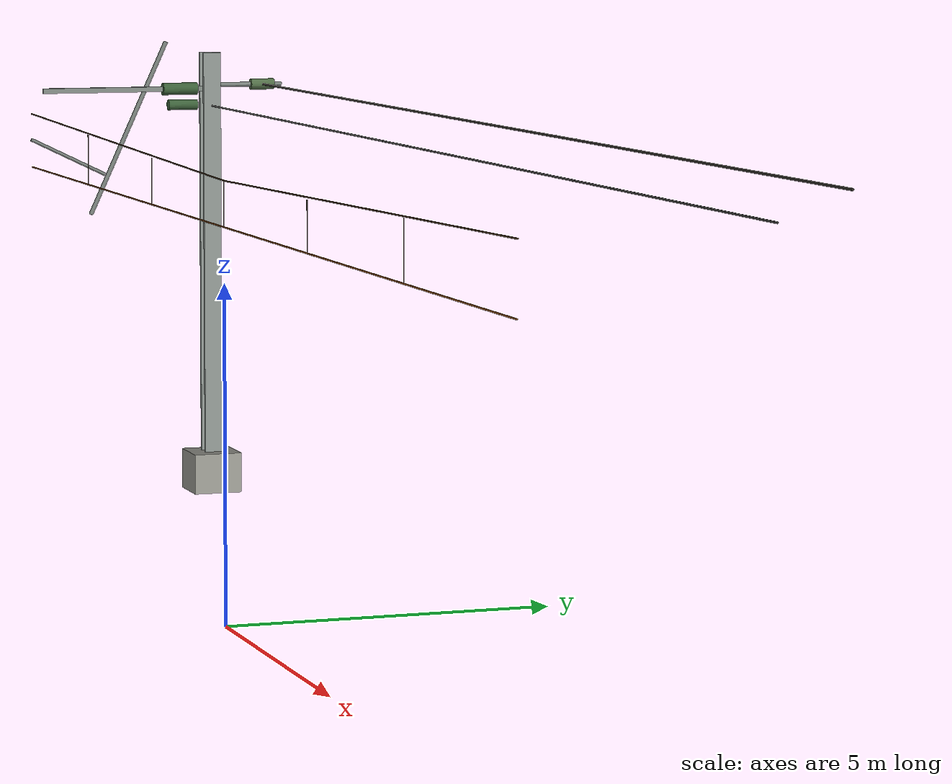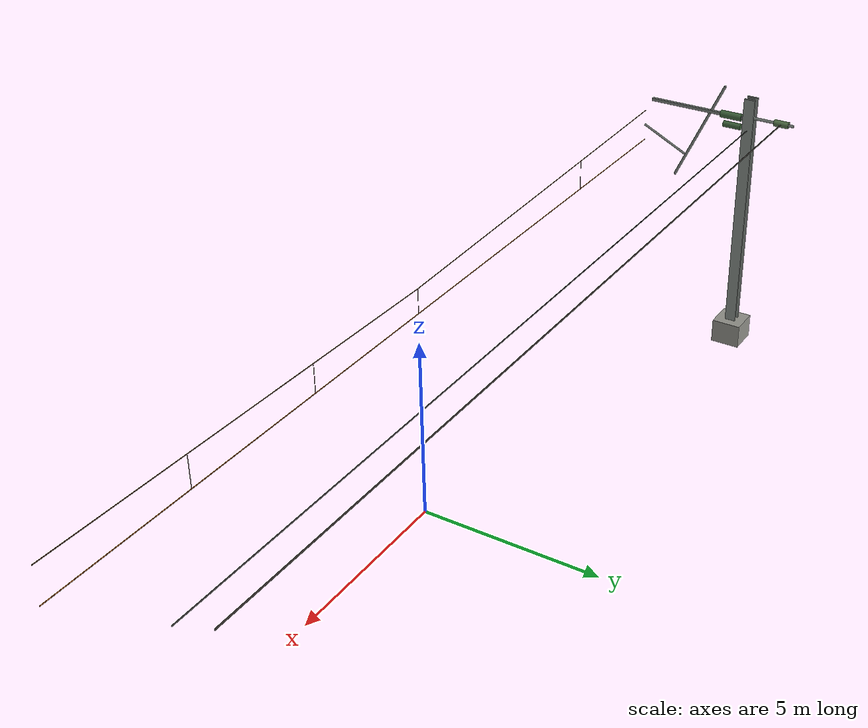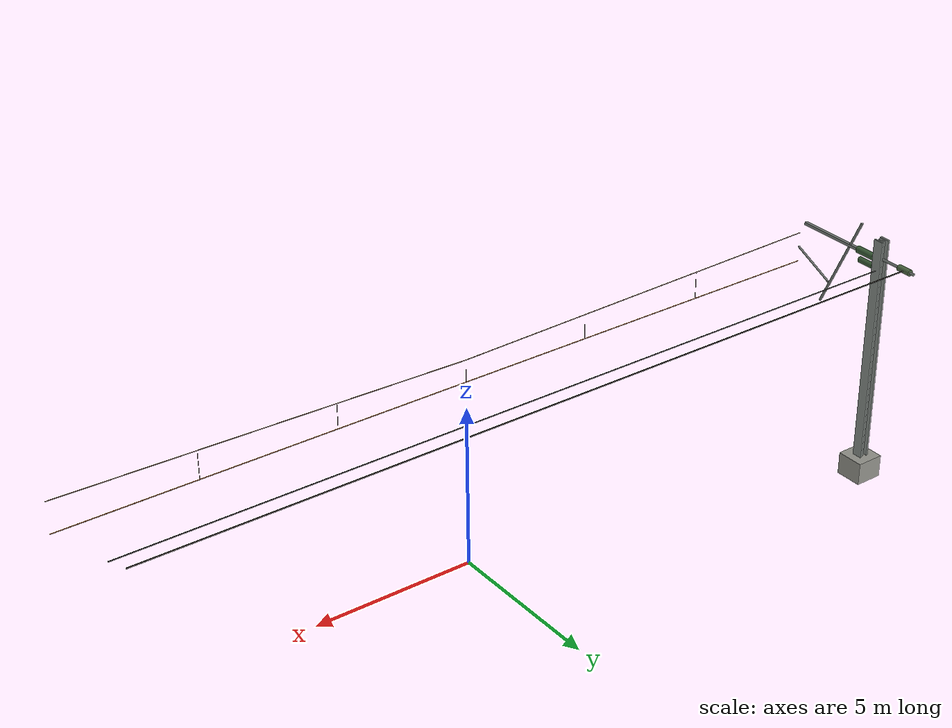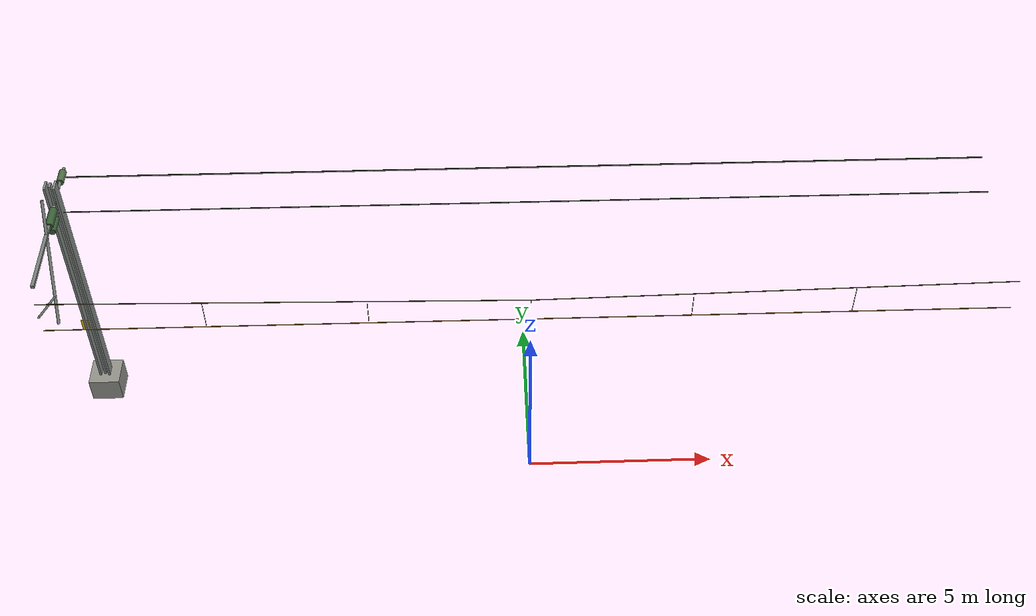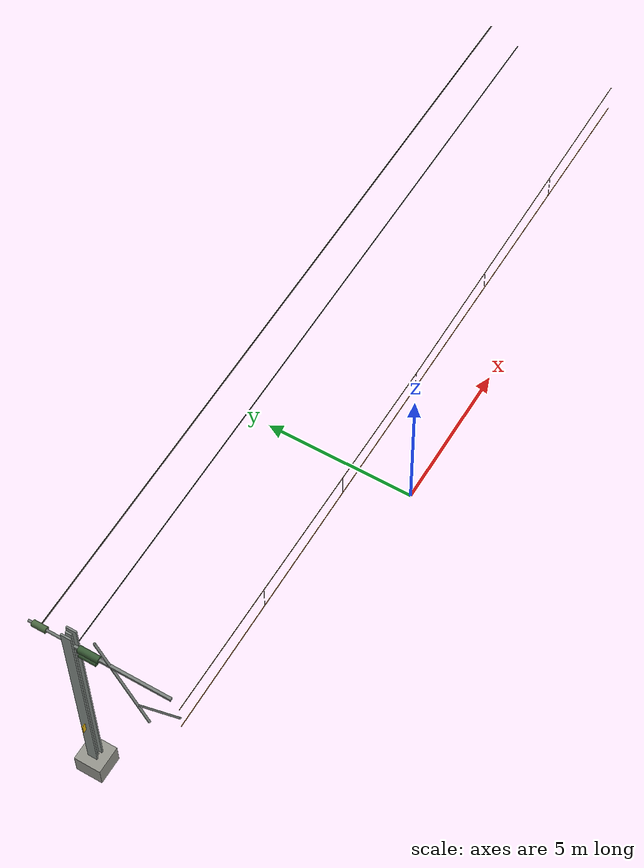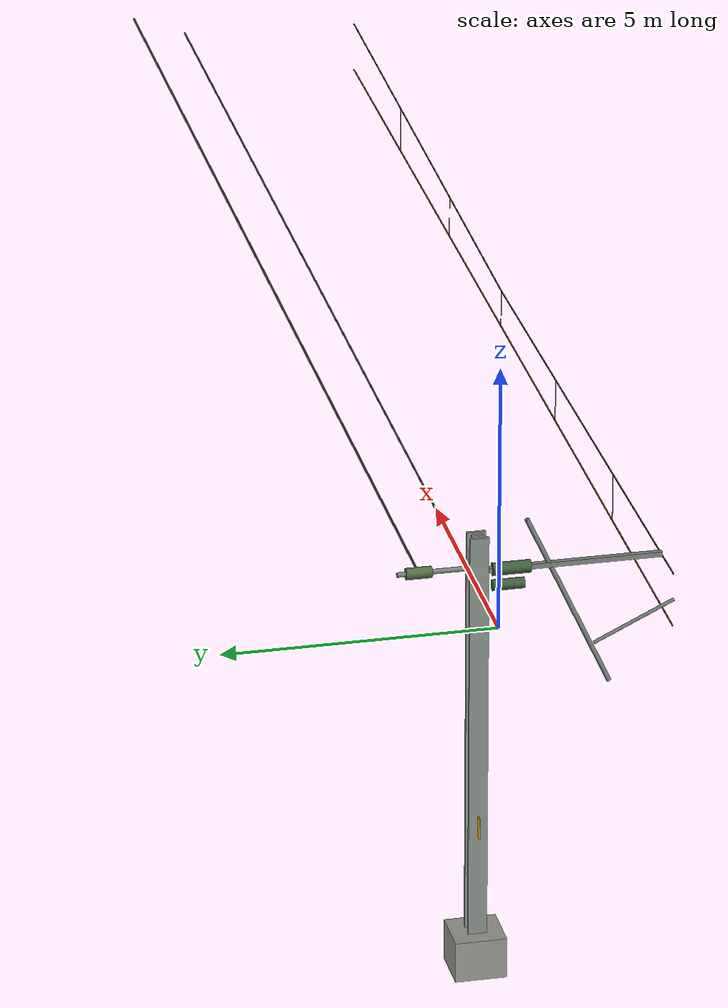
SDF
<?xml version="1.0"?>
<sdf version="1.9">
  <model name="catenary_span_24m">
    <static>true</static>
    <plugin filename="gz-sim-label-system" name="gz::sim::systems::Label"><label>30</label></plugin>
    <include><uri>model://catenary_mast</uri><name>mast_left</name><pose>-12 0 0 0 0 0</pose></include>
    <link name="conductors">
      <visual name="contact"><pose>0 0 5.812 0 1.570796 0</pose><geometry><cylinder><radius>0.011</radius><length>24</length></cylinder></geometry><material><diffuse>0.58 0.33 0.11 1</diffuse><specular>0.55 0.40 0.20 1</specular></material></visual>
      <visual name="messenger_0"><pose>-9 0 6.667 0 1.59162 0</pose><geometry><cylinder><radius>0.010</radius><length>6.001</length></cylinder></geometry><material><diffuse>0.34 0.25 0.15 1</diffuse></material></visual>
      <visual name="messenger_1"><pose>-3 0 6.542 0 1.59162 0</pose><geometry><cylinder><radius>0.010</radius><length>6.001</length></cylinder></geometry><material><diffuse>0.34 0.25 0.15 1</diffuse></material></visual>
      <visual name="messenger_2"><pose>3 0 6.542 0 1.54997 0</pose><geometry><cylinder><radius>0.010</radius><length>6.001</length></cylinder></geometry><material><diffuse>0.34 0.25 0.15 1</diffuse></material></visual>
      <visual name="messenger_3"><pose>9 0 6.667 0 1.54997 0</pose><geometry><cylinder><radius>0.010</radius><length>6.001</length></cylinder></geometry><material><diffuse>0.34 0.25 0.15 1</diffuse></material></visual>
      <visual name="dropper_m8"><pose>-8 0 6.218 0 0 0</pose><geometry><cylinder><radius>0.006</radius><length>0.812</length></cylinder></geometry><material><diffuse>0.26 0.22 0.17 1</diffuse></material></visual>
      <visual name="dropper_m4"><pose>-4 0 6.168 0 0 0</pose><geometry><cylinder><radius>0.006</radius><length>0.712</length></cylinder></geometry><material><diffuse>0.26 0.22 0.17 1</diffuse></material></visual>
      <visual name="dropper_0"><pose>0 0 6.143 0 0 0</pose><geometry><cylinder><radius>0.006</radius><length>0.662</length></cylinder></geometry><material><diffuse>0.26 0.22 0.17 1</diffuse></material></visual>
      <visual name="dropper_p4"><pose>4 0 6.168 0 0 0</pose><geometry><cylinder><radius>0.006</radius><length>0.712</length></cylinder></geometry><material><diffuse>0.26 0.22 0.17 1</diffuse></material></visual>
      <visual name="dropper_p8"><pose>8 0 6.218 0 0 0</pose><geometry><cylinder><radius>0.006</radius><length>0.812</length></cylinder></geometry><material><diffuse>0.26 0.22 0.17 1</diffuse></material></visual>
      <visual name="feeder"><pose>0 4.15 7.18 0 1.570796 0</pose><geometry><cylinder><radius>0.018</radius><length>24</length></cylinder></geometry><material><diffuse>0.16 0.15 0.13 1</diffuse></material></visual>
      <visual name="protective_wire"><pose>0 3.20 6.82 0 1.570796 0</pose><geometry><cylinder><radius>0.014</radius><length>24</length></cylinder></geometry><material><diffuse>0.18 0.18 0.17 1</diffuse></material></visual>
    </link>
  </model>
</sdf>

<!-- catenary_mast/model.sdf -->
<sdf version="1.9">
  <model name="catenary_mast">
    <static>true</static>
    <plugin filename="gz-sim-label-system" name="gz::sim::systems::Label"><label>30</label></plugin>
    <link name="mast">
      <collision name="foundation_collision"><pose>0 3.20 0.35 0 0 0</pose><geometry><box><size>0.85 0.85 0.70</size></box></geometry></collision>
      <visual name="foundation"><pose>0 3.20 0.35 0 0 0</pose><geometry><box><size>0.85 0.85 0.70</size></box></geometry><material><ambient>0.40 0.40 0.38 1</ambient><diffuse>0.58 0.58 0.55 1</diffuse></material></visual>

      <!-- H-section galvanised steel mast -->
      <visual name="mast_web"><pose>0 3.20 4.05 0 0 0</pose><geometry><box><size>0.055 0.19 7.40</size></box></geometry><material><ambient>0.35 0.37 0.36 1</ambient><diffuse>0.55 0.58 0.56 1</diffuse><specular>0.35 0.35 0.35 1</specular></material></visual>
      <visual name="mast_flange_a"><pose>0.12 3.20 4.05 0 0 0</pose><geometry><box><size>0.055 0.31 7.40</size></box></geometry><material><diffuse>0.53 0.56 0.54 1</diffuse></material></visual>
      <visual name="mast_flange_b"><pose>-0.12 3.20 4.05 0 0 0</pose><geometry><box><size>0.055 0.31 7.40</size></box></geometry><material><diffuse>0.53 0.56 0.54 1</diffuse></material></visual>

      <!-- Cantilever and registration assembly -->
      <visual name="upper_arm"><pose>0 1.70 7.12 0 0 0</pose><geometry><box><size>0.085 3.0 0.085</size></box></geometry><material><diffuse>0.48 0.51 0.49 1</diffuse></material></visual>
      <visual name="diagonal_arm"><pose>0 1.72 6.45 -0.43 0 0</pose><geometry><cylinder><radius>0.038</radius><length>3.28</length></cylinder></geometry><material><diffuse>0.46 0.49 0.47 1</diffuse></material></visual>
      <visual name="upper_insulator"><pose>0 2.65 7.12 1.570796 0 0</pose><geometry><cylinder><radius>0.105</radius><length>0.62</length></cylinder></geometry><material><diffuse>0.23 0.37 0.22 1</diffuse><specular>0.45 0.45 0.45 1</specular></material></visual>
      <visual name="lower_insulator"><pose>0 2.70 6.84 1.570796 0 0</pose><geometry><cylinder><radius>0.090</radius><length>0.52</length></cylinder></geometry><material><diffuse>0.23 0.37 0.22 1</diffuse><specular>0.45 0.45 0.45 1</specular></material></visual>
      <visual name="steady_arm"><pose>0 0.64 5.97 1.12 0 0</pose><geometry><cylinder><radius>0.028</radius><length>1.45</length></cylinder></geometry><material><diffuse>0.46 0.49 0.47 1</diffuse></material></visual>

      <!-- Feeder support and safety marker -->
      <visual name="feeder_bracket"><pose>0 3.85 7.18 1.570796 0 0</pose><geometry><cylinder><radius>0.040</radius><length>1.30</length></cylinder></geometry><material><diffuse>0.47 0.50 0.48 1</diffuse></material></visual>
      <visual name="feeder_insulator"><pose>0 4.15 7.18 1.570796 0 0</pose><geometry><cylinder><radius>0.095</radius><length>0.42</length></cylinder></geometry><material><diffuse>0.31 0.42 0.27 1</diffuse></material></visual>
      <visual name="warning_plate"><pose>-0.151 3.20 2.65 0 1.570796 0</pose><geometry><box><size>0.36 0.018 0.24</size></box></geometry><material><ambient>0.75 0.58 0.04 1</ambient><diffuse>0.92 0.72 0.06 1</diffuse></material></visual>
    </link>
  </model>
</sdf>
